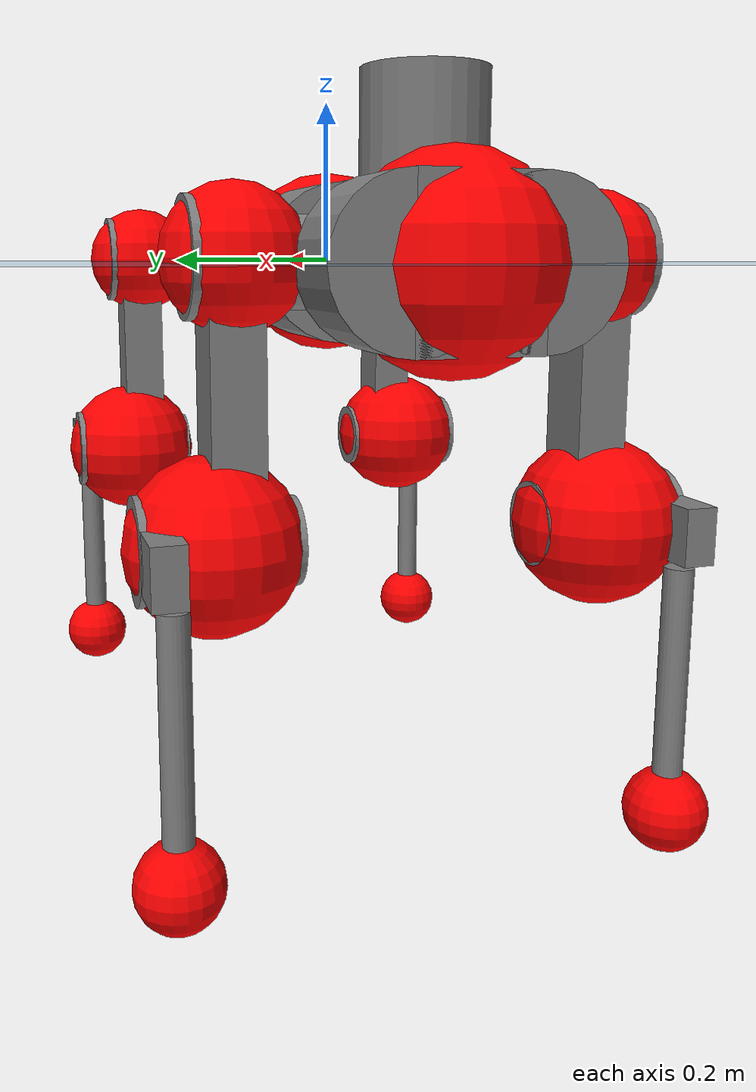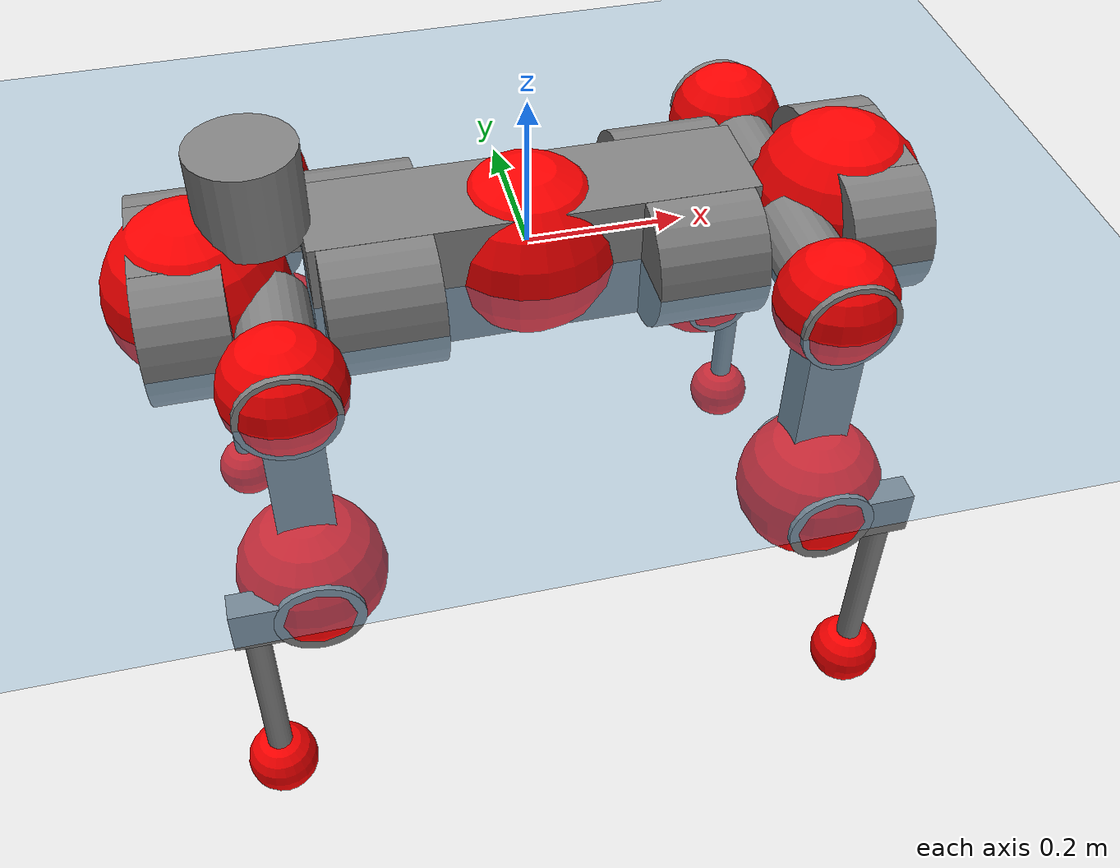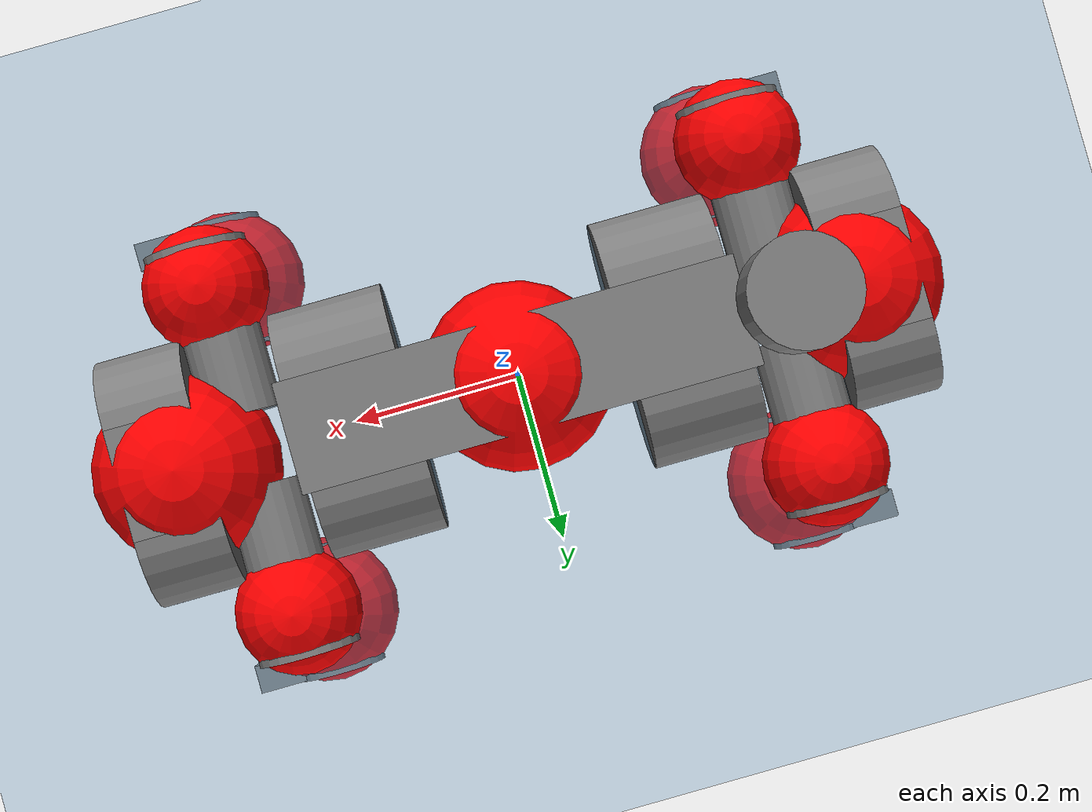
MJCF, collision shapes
<mujoco model="anymal_c">
  <compiler angle="radian" assetdir="assets" balanceinertia="true" inertiafromgeom="false"/>

  <option timestep="0.005" density="1.2" viscosity="2e-05"/>

  <size nkey="1"/>

  <visual>
    <quality shadowsize="8192"/>
    <map shadowclip="0.5"/>
  </visual>

  <default>
    <default class="/">
      <material specular="0" shininess="0.25"/>
      <geom contype="0" conaffinity="0" group="1" solref="-1000 -80"/>
      <site size="0.01 0.005 0.005" group="5"/>
      <general forcelimited="true" forcerange="-80 80" biastype="affine" gainprm="80" biasprm="0 -80 -2"/>
      <default class="anymal_c">
        <joint armature="0.01" damping="0.01" frictionloss="0.1"/>
        <default class="visual">
          <geom type="mesh" group="2"/>
          <default class="visual_zflip"/>
        </default>
        <default class="collision">
          <geom type="cylinder" group="3"/>
          <default class="foot">
            <geom size="0.03 0 0" type="sphere" condim="6" priority="1" friction="0.8 0.02 0.01" solimp="0.015 1 0.03"/>
          </default>
        </default>
      </default>
      <default class="reward_collision_sphere">
        <geom group="5" rgba="1 0 0 1"/>
      </default>
    </default>
  </default>

  <asset>
    <texture type="skybox" colorspace="auto" name="//unnamed_texture_0" builtin="gradient" rgb1="0.95 0.95 0.95" rgb2="0.95 0.95 0.95" width="100" height="600"/>
    <texture type="2d" colorspace="auto" name="texplane" builtin="checker" rgb1="0.345 0.575 0.748" rgb2="0.345 0.575 0.748" markrgb="1 1 1" width="512" height="512"/>
    <texture type="2d" colorspace="linear" name="base" file="base.png"/>
    <texture type="2d" colorspace="linear" name="top_shell" file="top_shell.png"/>
    <texture type="2d" colorspace="linear" name="bottom_shell" file="bottom_shell.png"/>
    <texture type="2d" colorspace="linear" name="remote" file="remote.png"/>
    <texture type="2d" colorspace="linear" name="hatch" file="hatch.png"/>
    <texture type="2d" colorspace="linear" name="handle" file="handle.png"/>
    <texture type="2d" colorspace="linear" name="face" file="face.png"/>
    <texture type="2d" colorspace="linear" name="battery" file="battery.png"/>
    <texture type="2d" colorspace="linear" name="lidar_cage" file="lidar_cage.png"/>
    <texture type="2d" colorspace="linear" name="depth_camera" file="depth_camera.png"/>
    <texture type="2d" colorspace="linear" name="wide_angle_camera" file="wide_angle_camera.png"/>
    <texture type="2d" colorspace="linear" name="lidar" file="lidar.png"/>
    <texture type="2d" colorspace="linear" name="drive" file="drive.png"/>
    <texture type="2d" colorspace="linear" name="hip_l" file="hip_l.png"/>
    <texture type="2d" colorspace="linear" name="shank_l" file="shank_l.png"/>
    <texture type="2d" colorspace="linear" name="foot" file="foot.png"/>
    <texture type="2d" colorspace="linear" name="thigh" file="thigh.png"/>
    <texture type="2d" colorspace="linear" name="shank_r" file="shank_r.png"/>
    <texture type="2d" colorspace="linear" name="hip_r" file="hip_r.png"/>
    <material name="MatPlane" class="/" texture="texplane" texuniform="true" texrepeat="2 2" specular="0.9" shininess="0.5"/>
    <material name="black_plastic" class="/" rgba="0.007 0.007 0.007 1"/>
    <material name="green" class="/" rgba="0.052 0.178 0.033 1"/>
    <material name="red" class="/" rgba="0.178 0.006 0.005 1"/>
    <material name="yellow" class="/" rgba="0.178 0.119 0.006 1"/>
    <material name="lwl" class="/" rgba="0.8 0.8 0.8 1"/>
    <material name="base" class="/" texture="base"/>
    <material name="top_shell" class="/" texture="top_shell"/>
    <material name="bottom_shell" class="/" texture="bottom_shell"/>
    <material name="hip_l" class="/" texture="hip_l"/>
    <material name="thigh" class="/" texture="thigh"/>
    <material name="shank_l" class="/" texture="shank_l"/>
    <material name="foot" class="/" texture="foot"/>
    <material name="hip_r" class="/" texture="hip_r"/>
    <material name="shank" class="/" texture="shank_r"/>
    <material name="hatch" class="/" texture="hatch"/>
    <material name="remote" class="/" texture="remote"/>
    <material name="handle" class="/" texture="handle"/>
    <material name="face" class="/" texture="face"/>
    <material name="depth_camera" class="/" texture="depth_camera"/>
    <material name="wide_angle_camera" class="/" texture="wide_angle_camera"/>
    <material name="battery" class="/" texture="battery"/>
    <material name="lidar_cage" class="/" texture="lidar_cage"/>
    <material name="lidar" class="/" texture="lidar"/>
    <material name="drive" class="/" texture="drive"/>
    <mesh name="base_0" class="/" file="base_0.obj"/>
    <mesh name="base_1" class="/" file="base_1.obj"/>
    <mesh name="base_2" class="/" file="base_2.obj"/>
    <mesh name="base_3" class="/" file="base_3.obj"/>
    <mesh name="base_4" class="/" file="base_4.obj"/>
    <mesh name="base_5" class="/" file="base_5.obj"/>
    <mesh name="top_shell" class="/" file="top_shell.obj"/>
    <mesh name="bottom_shell" class="/" file="bottom_shell.obj"/>
    <mesh name="remote" class="/" file="remote.obj"/>
    <mesh name="handle" class="/" file="handle.obj"/>
    <mesh name="face" class="/" file="face.obj"/>
    <mesh name="wide_angle_camera" class="/" file="wide_angle_camera.obj"/>
    <mesh name="depth_camera" class="/" file="depth_camera.obj"/>
    <mesh name="battery" class="/" file="battery.obj"/>
    <mesh name="lidar_cage" class="/" file="lidar_cage.obj"/>
    <mesh name="lidar" class="/" file="lidar.obj"/>
    <mesh name="drive" class="/" file="drive.obj"/>
    <mesh name="hip_l" class="/" file="hip_l.obj"/>
    <mesh name="thigh" class="/" file="thigh.obj"/>
    <mesh name="shank_l" class="/" file="shank_l.obj"/>
    <mesh name="foot" class="/" file="foot.obj"/>
    <mesh name="hip_r" class="/" file="hip_r.obj"/>
    <mesh name="hatch" class="/" file="hatch.obj"/>
    <mesh name="shank_r" class="/" file="shank_r.obj"/>
  </asset>

  <worldbody>
    <geom name="floor" class="/" size="100 100 0.125" type="plane" group="0" material="MatPlane"/>
    <light name="toplight_shadow" class="/" pos="0 0 5" dir="0.0990148 0.0990148 -0.990148" type="directional" ambient="0.04 0.04 0.04" diffuse="0.55 0.55 0.55" specular="0.12 0.12 0.12"/>
    <light name="toplight_fill" class="/" pos="0 0 5" dir="0.0990148 0.0990148 -0.990148" type="directional" castshadow="false" ambient="0.04 0.04 0.04" diffuse="0.3 0.3 0.3" specular="0.08 0.08 0.08"/>
    <body name="trunk" childclass="anymal_c" pos="-0.00016075 4.65588e-05 -0.00204928" quat="1 0.000151469 -5.15054e-05 0.000227175">
      <inertial pos="0.00242575 0.00268516 0.0525257" quat="0.499981 0.499957 0.500072 0.499989" mass="16.392" diaginertia="0.408596 0.430878 0.245956"/>
      <joint name="//unnamed_joint_0" type="free" armature="0" damping="0" frictionloss="0"/>
      <geom name="//unnamed_geom_1" class="visual" material="green" mesh="base_0"/>
      <geom name="//unnamed_geom_2" class="visual" material="yellow" mesh="base_1"/>
      <geom name="//unnamed_geom_3" class="visual" material="red" mesh="base_2"/>
      <geom name="//unnamed_geom_4" class="visual" material="black_plastic" mesh="base_3"/>
      <geom name="//unnamed_geom_5" class="visual" material="lwl" mesh="base_4"/>
      <geom name="//unnamed_geom_6" class="visual" material="base" mesh="base_5"/>
      <geom name="trunk_1" class="collision" size="0.277528 0.0669895 0.0861293" type="box"/>
      <geom name="trunk_2" class="collision" size="0.0861293 0.069382" pos="0.19807 0.0651771 0" quat="0.707107 0 0.707107 0"/>
      <geom name="trunk_3" class="collision" size="0.0861293 0.069382" pos="-0.19807 0.0651771 0" quat="0.707107 0 0.707107 0"/>
      <geom name="trunk_4" class="collision" size="0.0861293 0.069382" pos="0.19807 -0.0651771 0" quat="0.707107 0 0.707107 0"/>
      <geom name="trunk_5" class="collision" size="0.0861293 0.069382" pos="-0.19807 -0.0651771 0" quat="0.707107 0 0.707107 0"/>
      <geom name="//unnamed_geom_12" class="visual" material="top_shell" mesh="top_shell"/>
      <geom name="//unnamed_geom_13" class="visual" material="bottom_shell" mesh="bottom_shell"/>
      <geom name="//unnamed_geom_14" class="visual" material="remote" mesh="remote"/>
      <geom name="//unnamed_geom_15" class="visual" material="handle" mesh="handle"/>
      <geom name="//unnamed_geom_16" class="visual" pos="0.377472 0 0" quat="1 0 0 0" material="face" mesh="face"/>
      <geom name="trunk_6" class="collision" size="0.0526346 0.0669895 0.0861293" pos="0.427558 0 0" type="box"/>
      <geom name="//unnamed_geom_18" class="collision" size="0.0861293 0.0526346" pos="0.427558 0.0651771 0" quat="0.707107 0 0.707107 0"/>
      <geom name="//unnamed_geom_19" class="collision" size="0.0861293 0.0526346" pos="0.427558 -0.0651771 0" quat="0.707107 0 0.707107 0"/>
      <geom name="//unnamed_geom_20" class="visual" pos="0.420415 0 -0.0309538" quat="0.965926 0 0.258819 0" material="depth_camera" mesh="depth_camera"/>
      <geom name="//unnamed_geom_21" class="visual" pos="0.467173 0 0.0154073" material="wide_angle_camera" mesh="wide_angle_camera"/>
      <geom name="//unnamed_geom_22" class="visual_zflip" pos="-0.377472 0 0" quat="0 0 0 1" material="face" mesh="face"/>
      <geom name="trunk_7" class="collision" size="0.0526346 0.0669895 0.0861293" pos="-0.427558 0 0" quat="0 0 0 1" type="box"/>
      <geom name="//unnamed_geom_24" class="collision" size="0.0861293 0.0526346" pos="-0.427558 -0.0651771 0" quat="0 -0.707107 0 0.707107"/>
      <geom name="//unnamed_geom_25" class="collision" size="0.0861293 0.0526346" pos="-0.427558 0.0651771 0" quat="0 -0.707107 0 0.707107"/>
      <geom name="//unnamed_geom_26" class="visual" pos="-0.420415 0 -0.0309538" quat="0 -0.258819 0 0.965926" material="depth_camera" mesh="depth_camera"/>
      <geom name="//unnamed_geom_27" class="visual_zflip" pos="-0.467173 0 0.0154073" quat="0 0 0 1" material="wide_angle_camera" mesh="wide_angle_camera"/>
      <geom name="//unnamed_geom_28" class="visual" material="battery" mesh="battery"/>
      <geom name="//unnamed_geom_29" class="visual" pos="0 0.0714651 0.0289976" quat="0.683013 -0.183013 0.183013 0.683013" material="depth_camera" mesh="depth_camera"/>
      <geom name="//unnamed_geom_30" class="visual" pos="0 -0.0714651 0.0289976" quat="0.683013 0.183013 0.183013 -0.683013" material="depth_camera" mesh="depth_camera"/>
      <geom name="//unnamed_geom_31" class="visual" pos="-0.331483 0 0.0756469" quat="1 0 0 0" material="lidar_cage" mesh="lidar_cage"/>
      <geom name="trunk_8" class="collision" size="0.0669895 0.0574196" pos="-0.331483 0 0.137399"/>
      <geom name="//unnamed_geom_33" class="visual" pos="-0.331483 8.02793e-06 0.146354" quat="0.707107 0 0 -0.707107" material="lidar" mesh="lidar"/>
      <geom name="//unnamed_geom_34" class="visual" pos="0.273109 0.0968694 -1.69236e-09" quat="0.258819 0.965926 0 0" material="drive" mesh="drive"/>
      <geom name="//unnamed_geom_35" class="visual" pos="0.273109 -0.0968694 1.69236e-09" quat="0.258819 -0.965926 0 0" material="drive" mesh="drive"/>
      <geom name="//unnamed_geom_36" class="visual" pos="-0.273109 0.0968694 1.69236e-09" quat="0 0 0.965926 -0.258819" material="drive" mesh="drive"/>
      <geom name="//unnamed_geom_37" class="visual" pos="-0.273109 -0.0968694 -1.69236e-09" quat="0 0 -0.965926 -0.258819" material="drive" mesh="drive"/>
      <geom name="//unnamed_geom_38" class="visual" pos="0.105637 0 0.0751322" quat="1 0 0 0" material="hatch" mesh="hatch"/>
      <geom name="//unnamed_geom_39" class="reward_collision_sphere" size="0.114839"/>
      <geom name="//unnamed_geom_40" class="reward_collision_sphere" size="0.114839" pos="0.4098 0 0"/>
      <geom name="//unnamed_geom_41" class="reward_collision_sphere" size="0.114839" pos="-0.4098 0 0"/>
      <site name="imu" pos="0.223946 0.00269541 0.0460339" size="0.00956993"/>
      <camera name="track" pos="0 -1.8622 0" quat="0.707107 0.707107 0 0" mode="trackcom"/>
      <camera name="ego_camera" pos="0.4098 0 -0.0411684" quat="-0.5 -0.5 0.5 0.5"/>
      <body name="LF_HIP" pos="0.273177 0.0962232 -0.000678369" quat="0.259014 0.965874 0.00034305 -0.000307751">
        <inertial pos="0.0490235 -0.0144294 -0.00916796" quat="-0.125452 0.710622 -0.137869 0.678432" mass="2.49366" diaginertia="0.00370715 0.00344044 0.00389692"/>
        <joint name="LF_HAA" pos="0 0 0" axis="0.999999 0.000343227 -0.00127376" stiffness="0.000295999" range="-0.721091 0.490956" armature="0.0102896" damping="0.0148704" frictionloss="0.083369"/>
        <geom name="//unnamed_geom_42" class="visual" pos="0 -9.9554e-05 1.63517e-05" quat="0.258819 -0.965926 0 0" material="hip_l" mesh="hip_l"/>
        <geom name="//unnamed_geom_43" class="visual" pos="0.054549 -0.0664016 -0.0390626" quat="0.183013 -0.683013 0.683013 0.183013" material="drive" mesh="drive"/>
        <geom name="//unnamed_geom_44" class="collision" size="0.0478496 0.0669895" pos="0.054549 -0.0111358 -0.00710669" quat="-0.353553 -0.612372 0.612372 -0.353553"/>
        <body name="LF_THIGH" pos="0.0547354 -0.0672645 -0.0428069" quat="0.183029 -0.683039 0.68298 0.183021">
          <inertial pos="0.0277909 0.000294473 -0.253758" quat="0.993075 -0.0066323 -0.0826056 0.0832716" mass="2.56624" diaginertia="0.0189291 0.0208135 0.00451278"/>
          <joint name="LF_HFE" pos="0 0 0" axis="0.999999 0.000172702 0.00139915" range="-3.18025 3.14084" armature="0.00920077" damping="0.00916415" frictionloss="0.0946505"/>
          <geom name="//unnamed_geom_45" class="visual" pos="-0.000406554 -6.40635e-07 0" quat="0.707107 0 0 -0.707107" material="thigh" mesh="thigh"/>
          <geom name="//unnamed_geom_46" class="collision" size="0.0622045 0.0382797" pos="0.0364267 0 0" quat="0.5 0.5 -0.5 -0.5"/>
          <geom name="//unnamed_geom_47" class="collision" size="0.0358872 0.0287098 0.135236" pos="0.02732 0 -0.145442" quat="0.707107 0 0 -0.707107" type="box"/>
          <geom name="//unnamed_geom_48" class="visual" pos="0.09134 0 -0.293325" quat="1 0 0 0" material="drive" mesh="drive"/>
          <geom name="//unnamed_geom_49" class="collision" size="0.0478496 0.0669895" pos="0.0275932 0 -0.293325" quat="0.707107 0 0.707107 0"/>
          <geom name="//unnamed_geom_50" class="reward_collision_sphere" size="0.0765594" pos="0.0227667 0 0"/>
          <body name="LF_SHANK" pos="0.0917008 0.00134515 -0.291654" quat="0.999999 -0.00112228 9.91255e-05 -0.000866476">
            <inertial pos="0.00472044 -0.0569162 -0.0828365" quat="0.993013 -0.115194 -0.000803537 -0.0255954" mass="0.503835" diaginertia="0.00636762 0.00631766 0.00126005"/>
            <joint name="LF_KFE" pos="0 0 0" axis="0.999983 -0.00282662 0.0050606" range="-3.15168 3.15872" armature="0.00956572" damping="0.022346" frictionloss="0.0858083"/>
            <geom name="//unnamed_geom_51" class="visual" pos="-0.000132569 -0.000706862 0" quat="0.707107 0 0 -0.707107" material="shank_l" mesh="shank_l"/>
            <geom name="LF_kfe_act" class="collision" size="0.0574196 0.0191399" pos="0.0182134 0 0" quat="0.5 0.5 -0.5 -0.5"/>
            <geom name="//unnamed_geom_53" class="collision" size="0.0550261 0.0322985 0.0181829" pos="0.0182134 -0.0535374 0" quat="0.5 0.5 -0.5 -0.5" type="box"/>
            <geom name="//unnamed_geom_54" class="visual" pos="0.0118842 -0.0821182 -0.347842" quat="0.382683 0 0 -0.92388" material="foot" mesh="foot"/>
            <geom name="LF_calf" class="collision" size="0.0167474 0.135177" pos="0.0118842 -0.0818904 -0.173921" quat="0.707107 0 0 -0.707107"/>
            <geom name="LF_foot" class="foot" size="0.0313102" pos="0.0118842 -0.0818904 -0.324685" quat="0.707107 0 0 -0.707107"/>
            <geom name="//unnamed_geom_57" class="reward_collision_sphere" size="0.0956993" pos="-0.0455334 0 0"/>
            <geom name="//unnamed_geom_58" class="reward_collision_sphere" size="0.0478496" pos="0.0118842 -0.0818904 -0.324685"/>
            <site name="LF_foot" class="foot" pos="0.0118842 -0.0818904 -0.324685" quat="0.707107 0 0 -0.707107" size="0.00956993"/>
          </body>
        </body>
      </body>
      <body name="RF_HIP" pos="0.273325 -0.0986215 0.000969449" quat="0.258072 -0.966125 -0.000774931 0.000451326">
        <inertial pos="0.0520009 0.0136873 -0.00761159" quat="0.13454 0.679792 0.127837 0.709534" mass="2.33056" diaginertia="0.00353579 0.00330062 0.00379564"/>
        <joint name="RF_HAA" pos="0 0 0" axis="0.999999 0.00098796 -0.000794042" range="-0.446771 0.667196" armature="0.00942916" damping="0.00484264" frictionloss="0.0879221"/>
        <geom name="//unnamed_geom_59" class="visual" pos="0 9.95532e-05 1.63516e-05" quat="0.258819 0.965926 0 0" material="hip_r" mesh="hip_r"/>
        <geom name="//unnamed_geom_60" class="visual" pos="0.054549 0.0664016 -0.0390626" quat="0.183013 0.683013 0.683013 -0.183013" material="drive" mesh="drive"/>
        <geom name="//unnamed_geom_61" class="collision" size="0.0478496 0.0669895" pos="0.054549 0.0111358 -0.00710669" quat="-0.353553 0.612372 0.612372 0.353553"/>
        <body name="RF_THIGH" pos="0.057431 0.0686049 -0.042819" quat="0.182969 0.68311 0.682921 -0.183037">
          <inertial pos="0.0286975 0.00068054 -0.252724" quat="0.992864 -0.00544023 -0.0791745 0.0890085" mass="2.75688" diaginertia="0.0188955 0.0215659 0.00492488"/>
          <joint name="RF_HFE" pos="0 0 0" axis="0.999921 -0.0118607 0.00421233" stiffness="0.00670812" range="-3.09087 3.0843" armature="0.00980072" damping="0" frictionloss="0.100819"/>
          <geom name="//unnamed_geom_62" class="visual" pos="-0.000406554 -6.40635e-07 0" quat="0.707107 0 0 -0.707107" material="thigh" mesh="thigh"/>
          <geom name="//unnamed_geom_63" class="collision" size="0.0622045 0.0382797" pos="0.0364267 0 0" quat="0.5 0.5 0.5 0.5"/>
          <geom name="//unnamed_geom_64" class="collision" size="0.0358872 0.0287098 0.135236" pos="0.02732 0 -0.145442" quat="0.707107 0 0 0.707107" type="box"/>
          <geom name="//unnamed_geom_65" class="visual" pos="0.09134 0 -0.293325" quat="1 0 0 0" material="drive" mesh="drive"/>
          <geom name="//unnamed_geom_66" class="collision" size="0.0478496 0.0669895" pos="0.0275932 0 -0.293325" quat="0.707107 0 0.707107 0"/>
          <geom name="//unnamed_geom_67" class="reward_collision_sphere" size="0.0765594" pos="0.0227667 0 0"/>
          <body name="RF_SHANK" pos="0.0940575 -0.00117263 -0.292446" quat="1 -4.59908e-05 0.000528594 4.31487e-05">
            <inertial pos="0.00556625 0.0581306 -0.080204" quat="0.993162 0.113963 -0.00489061 0.0248333" mass="0.497512" diaginertia="0.00644243 0.00639572 0.00127892"/>
            <joint name="RF_KFE" pos="0 0 0" axis="0.999919 -0.00627408 0.0110519" range="-3.15061 3.08514" armature="0.00954214" damping="0.00518292" frictionloss="0.0833904"/>
            <geom name="//unnamed_geom_68" class="visual" pos="-0.000132568 0.000706861 0" quat="0.707107 0 0 0.707107" material="shank" mesh="shank_r"/>
            <geom name="RF_kfe_act" class="collision" size="0.0574196 0.0191399" pos="0.0182134 0 0" quat="0.5 0.5 0.5 0.5"/>
            <geom name="//unnamed_geom_70" class="collision" size="0.0550261 0.0322985 0.0181829" pos="0.0182134 0.0535374 0" quat="0.5 0.5 0.5 0.5" type="box"/>
            <geom name="//unnamed_geom_71" class="visual" pos="0.0118842 0.0821182 -0.347842" quat="0.382683 0 0 0.92388" material="foot" mesh="foot"/>
            <geom name="RF_calf" class="collision" size="0.0167474 0.135177" pos="0.0118842 0.0818904 -0.173921" quat="0.707107 0 0 0.707107"/>
            <geom name="RF_foot" class="foot" size="0.0283243" pos="0.0118842 0.0818904 -0.324685" quat="0.707107 0 0 0.707107"/>
            <geom name="//unnamed_geom_74" class="reward_collision_sphere" size="0.0956993" pos="-0.0455334 0 0"/>
            <geom name="//unnamed_geom_75" class="reward_collision_sphere" size="0.0478496" pos="0.0118842 0.0818904 -0.324685"/>
            <site name="RF_foot" class="foot" pos="0.0118842 0.0818904 -0.324685" quat="0.707107 0 0 0.707107" size="0.00956993"/>
          </body>
        </body>
      </body>
      <body name="LH_HIP" pos="-0.271519 0.0990323 0.000620546" quat="-6.36627e-06 0.000125993 0.965976 -0.258633">
        <inertial pos="0.0511563 0.0113941 -0.00948992" quat="0.142943 0.671444 0.128959 0.715611" mass="2.35768" diaginertia="0.003639 0.00351303 0.00378474"/>
        <joint name="LH_HAA" pos="0 0 0" axis="0.999961 0.0081341 -0.0035231" range="-0.51517 0.71394" armature="0.00959727" damping="0.000935468" frictionloss="0.0994764"/>
        <geom name="//unnamed_geom_76" class="visual" pos="0 9.95532e-05 1.63516e-05" quat="-0.258819 -0.965926 0 0" material="hip_r" mesh="hip_r"/>
        <geom name="//unnamed_geom_77" class="visual" pos="0.054549 0.0664016 -0.0390626" quat="0.183013 0.683013 0.683013 -0.183013" material="drive" mesh="drive"/>
        <geom name="//unnamed_geom_78" class="collision" size="0.0478496 0.0669895" pos="0.054549 0.0111358 -0.00710669" quat="-0.353553 0.612372 0.612372 0.353553"/>
        <body name="LH_THIGH" pos="0.0541278 0.0646626 -0.0434007" quat="0.182839 0.683253 0.683002 -0.182327">
          <inertial pos="0.0287287 -0.00212861 -0.252704" quat="0.99284 -0.00486652 -0.0809429 0.0877062" mass="2.69602" diaginertia="0.0198343 0.0213455 0.00503277"/>
          <joint name="LH_HFE" pos="0 0 0" axis="0.999994 0.00327157 -0.0014267" range="-3.1466 3.13307" armature="0.00942548" damping="0.0124604" frictionloss="0.0967638"/>
          <geom name="//unnamed_geom_79" class="visual" pos="-0.000406554 -6.40635e-07 0" quat="0.707107 0 0 -0.707107" material="thigh" mesh="thigh"/>
          <geom name="//unnamed_geom_80" class="collision" size="0.0622045 0.0382797" pos="0.0364267 0 0" quat="0.5 0.5 -0.5 -0.5"/>
          <geom name="//unnamed_geom_81" class="collision" size="0.0358872 0.0287098 0.135236" pos="0.02732 0 -0.145442" quat="0.707107 0 0 -0.707107" type="box"/>
          <geom name="//unnamed_geom_82" class="visual" pos="0.09134 0 -0.293325" quat="1 0 0 0" material="drive" mesh="drive"/>
          <geom name="//unnamed_geom_83" class="collision" size="0.0478496 0.0669895" pos="0.0275932 0 -0.293325" quat="0.707107 0 0.707107 0"/>
          <geom name="//unnamed_geom_84" class="reward_collision_sphere" size="0.0765594" pos="0.0227667 0 0"/>
          <body name="LH_SHANK" pos="0.0933939 -0.000547425 -0.293009" quat="0.999999 0.000952117 -0.000336327 -0.000476262">
            <inertial pos="0.00734174 0.0574601 -0.0848741" quat="0.992928 0.115941 -0.000593907 0.0255051" mass="0.513544" diaginertia="0.00662095 0.00688966 0.00137292"/>
            <joint name="LH_KFE" pos="0 0 0" axis="1 6.96947e-05 0.000167106" range="-3.14499 3.0917" armature="0.00959301" damping="0.0202194" frictionloss="0.0983104"/>
            <geom name="//unnamed_geom_85" class="visual" pos="-0.000132568 0.000706861 0" quat="-0.707107 0 0 -0.707107" material="shank" mesh="shank_r"/>
            <geom name="LH_kfe_act" class="collision" size="0.0574196 0.0191399" pos="0.0182134 0 0" quat="0.5 0.5 -0.5 -0.5"/>
            <geom name="//unnamed_geom_87" class="collision" size="0.0550261 0.0322985 0.0181829" pos="0.0182134 0.0535374 0" quat="0.5 0.5 -0.5 -0.5" type="box"/>
            <geom name="//unnamed_geom_88" class="visual" pos="0.0118842 0.0821182 -0.347842" quat="-0.382683 0 0 -0.92388" material="foot" mesh="foot"/>
            <geom name="LH_calf" class="collision" size="0.0167474 0.135177" pos="0.0118842 0.0818904 -0.173921" quat="0.707107 0 0 -0.707107"/>
            <geom name="LH_foot" class="foot" size="0.0269001" pos="0.0118842 0.0818904 -0.324685" quat="0.707107 0 0 -0.707107"/>
            <geom name="//unnamed_geom_91" class="reward_collision_sphere" size="0.0956993" pos="-0.0455334 0 0"/>
            <geom name="//unnamed_geom_92" class="reward_collision_sphere" size="0.0478496" pos="0.0118842 0.0818904 -0.324685"/>
            <site name="LH_foot" class="foot" pos="0.0118842 0.0818904 -0.324685" quat="0.707107 0 0 -0.707107" size="0.00956993"/>
          </body>
        </body>
      </body>
      <body name="RH_HIP" pos="-0.273077 -0.0945678 -0.00157385" quat="-0.000585627 -0.00136704 -0.965962 -0.258679">
        <inertial pos="0.0505333 -0.0138002 -0.00907242" quat="-0.138077 0.704205 -0.140393 0.682144" mass="2.41308" diaginertia="0.00365713 0.00334179 0.00370758"/>
        <joint name="RH_HAA" pos="0 0 0" axis="1 -8.40636e-05 -0.000689915" range="-0.776295 0.472353" armature="0.00817172" damping="0.0148265" frictionloss="0.103087"/>
        <geom name="//unnamed_geom_93" class="visual" pos="0 -9.9554e-05 1.63517e-05" quat="-0.258819 0.965926 0 0" material="hip_l" mesh="hip_l"/>
        <geom name="//unnamed_geom_94" class="visual" pos="0.054549 -0.0664016 -0.0390626" quat="-0.183013 0.683013 -0.683013 -0.183013" material="drive" mesh="drive"/>
        <geom name="//unnamed_geom_95" class="collision" size="0.0478496 0.0669895" pos="0.054549 -0.0111358 -0.00710669" quat="0.353553 0.612372 -0.612372 0.353553"/>
        <body name="RH_THIGH" pos="0.0551212 -0.067237 -0.0454767" quat="-0.183018 0.683057 -0.682975 -0.182984">
          <inertial pos="0.0284021 0.00250708 -0.251462" quat="0.994108 -0.00193675 -0.0691281 0.0834658" mass="2.61401" diaginertia="0.0182543 0.0201334 0.00468812"/>
          <joint name="RH_HFE" pos="0 0 0" axis="0.999959 0.00811951 -0.00395254" stiffness="0.00699935" range="-3.1399 3.08832" armature="0.0109245" damping="0.00853673" frictionloss="0.0921605"/>
          <geom name="//unnamed_geom_96" class="visual" pos="-0.000406554 -6.40635e-07 0" quat="0.707107 0 0 -0.707107" material="thigh" mesh="thigh"/>
          <geom name="//unnamed_geom_97" class="collision" size="0.0622045 0.0382797" pos="0.0364267 0 0" quat="0.5 0.5 0.5 0.5"/>
          <geom name="//unnamed_geom_98" class="collision" size="0.0358872 0.0287098 0.135236" pos="0.02732 0 -0.145442" quat="0.707107 0 0 0.707107" type="box"/>
          <geom name="//unnamed_geom_99" class="visual" pos="0.09134 0 -0.293325" quat="1 0 0 0" material="drive" mesh="drive"/>
          <geom name="//unnamed_geom_100" class="collision" size="0.0478496 0.0669895" pos="0.0275932 0 -0.293325" quat="0.707107 0 0.707107 0"/>
          <geom name="//unnamed_geom_101" class="reward_collision_sphere" size="0.0765594" pos="0.0227667 0 0"/>
          <body name="RH_SHANK" pos="0.089435 -0.00189497 -0.294167" quat="0.999999 -0.000677387 0.000916336 0.000170821">
            <inertial pos="0.00576912 -0.0569657 -0.0828256" quat="0.992363 -0.118844 -0.0133725 -0.0302022" mass="0.493895" diaginertia="0.00623043 0.00647343 0.00132194"/>
            <joint name="RH_KFE" pos="0 0 0" axis="0.999958 -0.00658005 0.00630458" stiffness="0.00975922" range="-3.07667 3.18936" armature="0.00936496" damping="0.00695188" frictionloss="0.091892"/>
            <geom name="//unnamed_geom_102" class="visual" pos="-0.000132569 -0.000706862 0" quat="0.707107 0 0 -0.707107" material="shank_l" mesh="shank_l"/>
            <geom name="RH_kfe_act" class="collision" size="0.0574196 0.0191399" pos="0.0182134 0 0" quat="0.5 0.5 0.5 0.5"/>
            <geom name="//unnamed_geom_104" class="collision" size="0.0550261 0.0322985 0.0181829" pos="0.0182134 -0.0535374 0" quat="0.5 0.5 0.5 0.5" type="box"/>
            <geom name="//unnamed_geom_105" class="visual" pos="0.0118842 -0.0821182 -0.347842" quat="0.382683 0 0 -0.92388" material="foot" mesh="foot"/>
            <geom name="RH_calf" class="collision" size="0.0167474 0.135177" pos="0.0118842 -0.0818904 -0.173921" quat="0.707107 0 0 0.707107"/>
            <geom name="RH_foot" class="foot" size="0.0252612" pos="0.0118842 -0.0818904 -0.324685" quat="0.707107 0 0 0.707107"/>
            <geom name="//unnamed_geom_108" class="reward_collision_sphere" size="0.0956993" pos="-0.0455334 0 0"/>
            <geom name="//unnamed_geom_109" class="reward_collision_sphere" size="0.0478496" pos="0.0118842 -0.0818904 -0.324685"/>
            <site name="RH_foot" class="foot" pos="0.0118842 -0.0818904 -0.324685" quat="0.707107 0 0 0.707107" size="0.00956993"/>
          </body>
        </body>
      </body>
    </body>
  </worldbody>

  <contact>
    <pair class="/" geom1="floor" geom2="LF_foot" name="//unnamed_contact_0"/>
    <pair class="/" geom1="floor" geom2="RF_foot" name="//unnamed_contact_1"/>
    <pair class="/" geom1="floor" geom2="LH_foot" name="//unnamed_contact_2"/>
    <pair class="/" geom1="floor" geom2="RH_foot" name="//unnamed_contact_3"/>
  </contact>

  <actuator>
    <general name="LF_HAA" class="/" joint="LF_HAA" forcerange="-74.8036 74.8036" gainprm="82.5701" biasprm="0 -82.5701 -1.97194"/>
    <general name="LF_HFE" class="/" joint="LF_HFE" forcerange="-69.1953 69.1953" gainprm="82.5701" biasprm="0 -82.5701 -1.97194"/>
    <general name="LF_KFE" class="/" joint="LF_KFE" forcerange="-74.062 74.062" gainprm="82.5701" biasprm="0 -82.5701 -1.97194"/>
    <general name="RF_HAA" class="/" joint="RF_HAA" forcerange="-79.9366 79.9366" gainprm="82.5701" biasprm="0 -82.5701 -1.97194"/>
    <general name="RF_HFE" class="/" joint="RF_HFE" forcerange="-77.8504 77.8504" gainprm="82.5701" biasprm="0 -82.5701 -1.97194"/>
    <general name="RF_KFE" class="/" joint="RF_KFE" forcerange="-75.9519 75.9519" gainprm="82.5701" biasprm="0 -82.5701 -1.97194"/>
    <general name="LH_HAA" class="/" joint="LH_HAA" forcerange="-82.2862 82.2862" gainprm="82.5701" biasprm="0 -82.5701 -1.97194"/>
    <general name="LH_HFE" class="/" joint="LH_HFE" forcerange="-77.4865 77.4865" gainprm="82.5701" biasprm="0 -82.5701 -1.97194"/>
    <general name="LH_KFE" class="/" joint="LH_KFE" forcerange="-75.8161 75.8161" gainprm="82.5701" biasprm="0 -82.5701 -1.97194"/>
    <general name="RH_HAA" class="/" joint="RH_HAA" forcerange="-69.3154 69.3154" gainprm="82.5701" biasprm="0 -82.5701 -1.97194"/>
    <general name="RH_HFE" class="/" joint="RH_HFE" forcerange="-79.4143 79.4143" gainprm="82.5701" biasprm="0 -82.5701 -1.97194"/>
    <general name="RH_KFE" class="/" joint="RH_KFE" forcerange="-79.7202 79.7202" gainprm="82.5701" biasprm="0 -82.5701 -1.97194"/>
  </actuator>

  <sensor>
    <gyro site="imu" name="imu_angular_velocity"/>
    <velocimeter site="imu" name="imu_linear_velocity"/>
    <framelinvel objtype="site" objname="LF_foot" name="LF_foot_global_linear_velocity"/>
    <framelinvel objtype="site" objname="RF_foot" name="RF_foot_global_linear_velocity"/>
    <framelinvel objtype="site" objname="LH_foot" name="LH_foot_global_linear_velocity"/>
    <framelinvel objtype="site" objname="RH_foot" name="RH_foot_global_linear_velocity"/>
  </sensor>

  <keyframe>
    <key name="home" qpos="0 0 0.55 1 0 0 0 0 0.4 -0.8 0 -0.4 0.8 0 -0.4 0.8 0 0.4 -0.8"/>
  </keyframe>
</mujoco>
